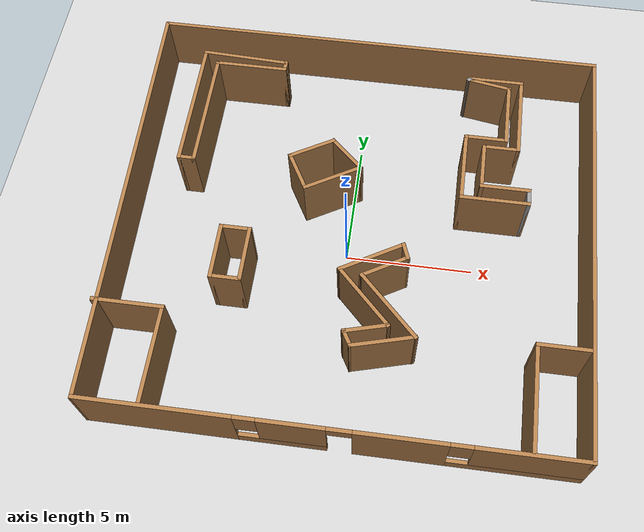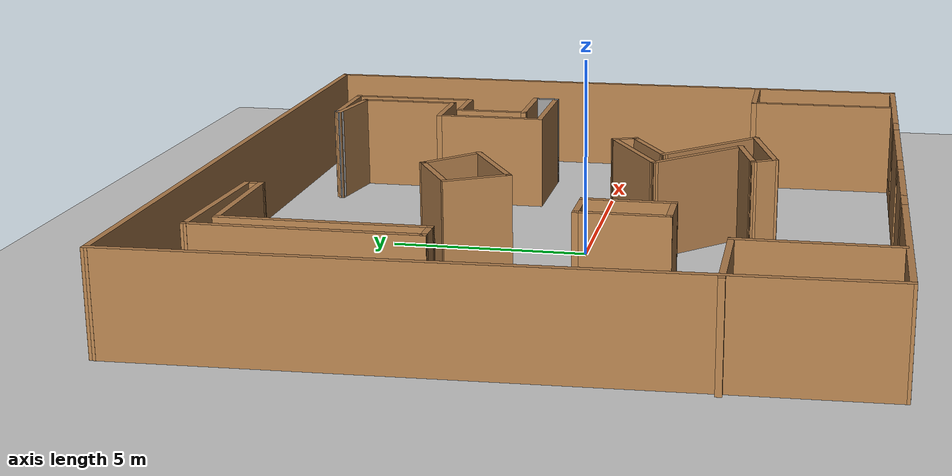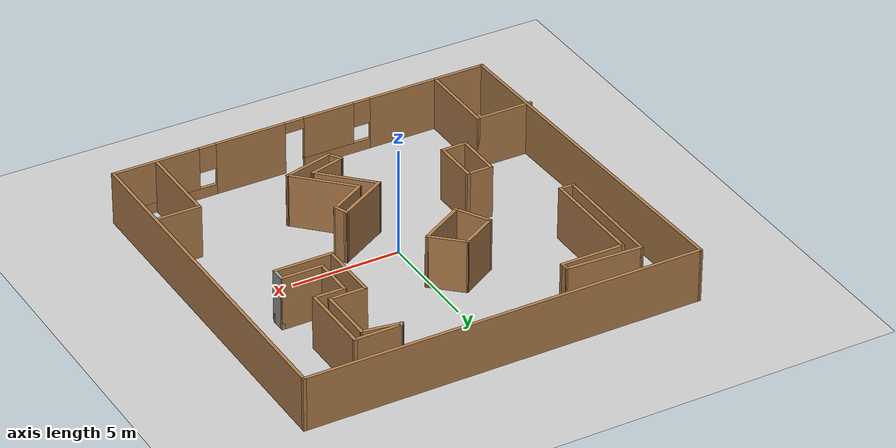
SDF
<sdf version="1.7">
 <world name="__default__">
  <gravity>0 0 -9.8</gravity>
  <magnetic_field>6e-06 2.3e-05 -4.2e-05</magnetic_field>
  <atmosphere type="adiabatic"/>
  <physics type="ode">
   <max_step_size>0.001</max_step_size>
   <real_time_factor>1</real_time_factor>
   <real_time_update_rate>1000</real_time_update_rate>
  </physics>
  <scene><ambient>0.4 0.4 0.4 1</ambient><background>0.7 0.7 0.7 1</background><shadows>1</shadows></scene>
  <audio><device>default</device></audio>
  <spherical_coordinates>
   <surface_model>EARTH_WGS84</surface_model>
   <latitude_deg>0</latitude_deg>
   <longitude_deg>0</longitude_deg>
   <elevation>0</elevation>
   <heading_deg>0</heading_deg>
  </spherical_coordinates>
  <model name="myworld2">
   <pose>0.15746 0.66916 0 0 -0 0</pose>
   <link name="Wall_10">
    <collision name="Wall_10_Collision">
     <geometry><box><size>3 0.15 2.5</size></box></geometry>
     <pose>0 0 1.25 0 -0 0</pose>
    </collision>
    <visual name="Wall_10_Visual">
     <pose>0 0 1.25 0 -0 0</pose>
     <geometry><box><size>3 0.15 2.5</size></box></geometry>
     <material>
      <script><uri>file://media/materials/scripts/gazebo.material</uri><name>Gazebo/Wood</name></script>
      <ambient>1 1 1 1</ambient>
     </material>
     <meta><layer>0</layer></meta>
    </visual>
    <pose>-5.15205 6.56949 0 0 -0 0</pose>
   </link>
   <link name="Wall_11">
    <collision name="Wall_11_Collision">
     <geometry><box><size>0.5 0.15 2.5</size></box></geometry>
     <pose>0 0 1.25 0 -0 0</pose>
    </collision>
    <visual name="Wall_11_Visual">
     <pose>0 0 1.25 0 -0 0</pose>
     <geometry><box><size>0.5 0.15 2.5</size></box></geometry>
     <material>
      <script><uri>file://media/materials/scripts/gazebo.material</uri><name>Gazebo/Wood</name></script>
      <ambient>1 1 1 1</ambient>
     </material>
     <meta><layer>0</layer></meta>
    </visual>
    <pose>-3.72705 6.74449 0 0 -0 1.5708</pose>
   </link>
   <link name="Wall_12">
    <collision name="Wall_12_Collision">
     <geometry><box><size>3.60326 0.15 2.5</size></box></geometry>
     <pose>0 0 1.25 0 -0 0</pose>
    </collision>
    <visual name="Wall_12_Visual">
     <pose>0 0 1.25 0 -0 0</pose>
     <geometry><box><size>3.60326 0.15 2.5</size></box></geometry>
     <material>
      <script><uri>file://media/materials/scripts/gazebo.material</uri><name>Gazebo/Wood</name></script>
      <ambient>1 1 1 1</ambient>
     </material>
     <meta><layer>0</layer></meta>
    </visual>
    <pose>-5.45205 6.99449 0 0 -0 3.09814</pose>
   </link>
   <link name="Wall_14">
    <collision name="Wall_14_Collision">
     <geometry><box><size>2.75 0.15 2.5</size></box></geometry>
     <pose>0 0 1.25 0 -0 0</pose>
    </collision>
    <visual name="Wall_14_Visual">
     <pose>0 0 1.25 0 -0 0</pose>
     <geometry><box><size>2.75 0.15 2.5</size></box></geometry>
     <material>
      <script><uri>file://media/materials/scripts/gazebo.material</uri><name>Gazebo/Wood</name></script>
      <ambient>1 1 1 1</ambient>
     </material>
     <meta><layer>0</layer></meta>
    </visual>
    <pose>5.66733 5.4313 0 0 -0 -1.5708</pose>
   </link>
   <link name="Wall_15">
    <collision name="Wall_15_Collision">
     <geometry><box><size>1.75 0.15 2.5</size></box></geometry>
     <pose>0 0 1.25 0 -0 0</pose>
    </collision>
    <visual name="Wall_15_Visual">
     <pose>0 0 1.25 0 -0 0</pose>
     <geometry><box><size>1.75 0.15 2.5</size></box></geometry>
     <material>
      <script><uri>file://media/materials/scripts/gazebo.material</uri><name>Gazebo/Wood</name></script>
      <ambient>1 1 1 1</ambient>
     </material>
     <meta><layer>0</layer></meta>
    </visual>
    <pose>4.86733 4.1313 0 0 -0 3.14159</pose>
   </link>
   <link name="Wall_16">
    <collision name="Wall_16_Collision">
     <geometry><box><size>3 0.15 2.5</size></box></geometry>
     <pose>0 0 1.25 0 -0 0</pose>
    </collision>
    <visual name="Wall_16_Visual">
     <pose>0 0 1.25 0 -0 0</pose>
     <geometry><box><size>3 0.15 2.5</size></box></geometry>
     <material>
      <script><uri>file://media/materials/scripts/gazebo.material</uri><name>Gazebo/Wood</name></script>
      <ambient>1 1 1 1</ambient>
     </material>
     <meta><layer>0</layer></meta>
    </visual>
    <pose>4.06733 2.7063 0 0 -0 -1.5708</pose>
   </link>
   <link name="Wall_17">
    <collision name="Wall_17_Collision">
     <geometry><box><size>2.75 0.15 2.5</size></box></geometry>
     <pose>0 0 1.25 0 -0 0</pose>
    </collision>
    <visual name="Wall_17_Visual">
     <pose>0 0 1.25 0 -0 0</pose>
     <geometry><box><size>2.75 0.15 2.5</size></box></geometry>
     <material>
      <script><uri>file://media/materials/scripts/gazebo.material</uri><name>Gazebo/Wood</name></script>
      <ambient>1 1 1 1</ambient>
     </material>
     <meta><layer>0</layer></meta>
    </visual>
    <pose>5.36733 1.2813 0 0 -0 0</pose>
   </link>
   <link name="Wall_18">
    <collision name="Wall_18_Collision">
     <geometry><box><size>0.75 0.15 2.5</size></box></geometry>
     <pose>0 0 1.25 0 -0 0</pose>
    </collision>
    <visual name="Wall_18_Visual">
     <pose>0 0 1.25 0 -0 0</pose>
     <geometry><box><size>0.75 0.15 2.5</size></box></geometry>
     <material>
      <script><uri>file://media/materials/scripts/gazebo.material</uri><name>Gazebo/Grey</name></script>
      <ambient>1 1 1 1</ambient>
     </material>
     <meta><layer>0</layer></meta>
    </visual>
    <pose>6.66733 1.5813 0 0 -0 1.5708</pose>
   </link>
   <link name="Wall_19">
    <collision name="Wall_19_Collision">
     <geometry><box><size>2 0.15 2.5</size></box></geometry>
     <pose>0 0 1.25 0 -0 0</pose>
    </collision>
    <visual name="Wall_19_Visual">
     <pose>0 0 1.25 0 -0 0</pose>
     <geometry><box><size>2 0.15 2.5</size></box></geometry>
     <material>
      <script><uri>file://media/materials/scripts/gazebo.material</uri><name>Gazebo/Wood</name></script>
      <ambient>1 1 1 1</ambient>
     </material>
     <meta><layer>0</layer></meta>
    </visual>
    <pose>5.74233 1.8813 0 0 -0 3.14159</pose>
   </link>
   <link name="Wall_2">
    <pose>0.251095 -8.425 0 0 -0 0</pose>
    <visual name="Wall_2_Visual_0">
     <pose>-6.1569 0 1.25 0 -0 0</pose>
     <geometry><box><size>5.6862 0.15 2.5</size></box></geometry>
     <material>
      <script><uri>file://media/materials/scripts/gazebo.material</uri><name>Gazebo/Wood</name></script>
      <ambient>1 1 1 1</ambient>
     </material>
     <meta><layer>0</layer></meta>
    </visual>
    <collision name="Wall_2_Collision_0">
     <geometry><box><size>5.6862 0.15 2.5</size></box></geometry>
     <pose>-6.1569 0 1.25 0 -0 0</pose>
    </collision>
    <visual name="Wall_2_Visual_1">
     <pose>2.47157 0 1.25 0 -0 0</pose>
     <geometry><box><size>3.31692 0.15 2.5</size></box></geometry>
     <material>
      <script><uri>file://media/materials/scripts/gazebo.material</uri><name>Gazebo/Wood</name></script>
      <ambient>1 1 1 1</ambient>
     </material>
     <meta><layer>0</layer></meta>
    </visual>
    <collision name="Wall_2_Collision_1">
     <geometry><box><size>3.31692 0.15 2.5</size></box></geometry>
     <pose>2.47157 0 1.25 0 -0 0</pose>
    </collision>
    <visual name="Wall_2_Visual_2">
     <pose>-1.70035 0 0.25 0 -0 0</pose>
     <geometry><box><size>3.2269 0.15 0.5</size></box></geometry>
     <material>
      <script><uri>file://media/materials/scripts/gazebo.material</uri><name>Gazebo/Wood</name></script>
      <ambient>1 1 1 1</ambient>
     </material>
     <meta><layer>0</layer></meta>
    </visual>
    <collision name="Wall_2_Collision_2">
     <geometry><box><size>3.2269 0.15 0.5</size></box></geometry>
     <pose>-1.70035 0 0.25 0 -0 0</pose>
    </collision>
    <visual name="Wall_2_Visual_3">
     <pose>6.56501 0 0.25 0 -0 0</pose>
     <geometry><box><size>4.86997 0.15 0.5</size></box></geometry>
     <material>
      <script><uri>file://media/materials/scripts/gazebo.material</uri><name>Gazebo/Wood</name></script>
      <ambient>1 1 1 1</ambient>
     </material>
     <meta><layer>0</layer></meta>
    </visual>
    <collision name="Wall_2_Collision_3">
     <geometry><box><size>4.86997 0.15 0.5</size></box></geometry>
     <pose>6.56501 0 0.25 0 -0 0</pose>
    </collision>
    <visual name="Wall_2_Visual_4">
     <pose>-1.30035 0 1.5 0 -0 0</pose>
     <geometry><box><size>2.4269 0.15 2</size></box></geometry>
     <material>
      <script><uri>file://media/materials/scripts/gazebo.material</uri><name>Gazebo/Wood</name></script>
      <ambient>1 1 1 1</ambient>
     </material>
     <meta><layer>0</layer></meta>
    </visual>
    <collision name="Wall_2_Collision_4">
     <geometry><box><size>2.4269 0.15 2</size></box></geometry>
     <pose>-1.30035 0 1.5 0 -0 0</pose>
    </collision>
    <visual name="Wall_2_Visual_5">
     <pose>-1.30035 0 1.5 0 -0 0</pose>
     <geometry><box><size>2.4269 0.15 2</size></box></geometry>
     <material>
      <script><uri>file://media/materials/scripts/gazebo.material</uri><name>Gazebo/Wood</name></script>
      <ambient>1 1 1 1</ambient>
     </material>
     <meta><layer>0</layer></meta>
    </visual>
    <collision name="Wall_2_Collision_5">
     <geometry><box><size>2.4269 0.15 2</size></box></geometry>
     <pose>-1.30035 0 1.5 0 -0 0</pose>
    </collision>
    <visual name="Wall_2_Visual_6">
     <pose>6.96501 0 1.5 0 -0 0</pose>
     <geometry><box><size>4.06997 0.15 2</size></box></geometry>
     <material>
      <script><uri>file://media/materials/scripts/gazebo.material</uri><name>Gazebo/Wood</name></script>
      <ambient>1 1 1 1</ambient>
     </material>
     <meta><layer>0</layer></meta>
    </visual>
    <collision name="Wall_2_Collision_6">
     <geometry><box><size>4.06997 0.15 2</size></box></geometry>
     <pose>6.96501 0 1.5 0 -0 0</pose>
    </collision>
    <visual name="Wall_2_Visual_7">
     <pose>-2.9138 0 1.9 0 -0 0</pose>
     <geometry><box><size>0.8 0.15 1.2</size></box></geometry>
     <material>
      <script><uri>file://media/materials/scripts/gazebo.material</uri><name>Gazebo/Wood</name></script>
      <ambient>1 1 1 1</ambient>
     </material>
     <meta><layer>0</layer></meta>
    </visual>
    <collision name="Wall_2_Collision_7">
     <geometry><box><size>0.8 0.15 1.2</size></box></geometry>
     <pose>-2.9138 0 1.9 0 -0 0</pose>
    </collision>
    <visual name="Wall_2_Visual_8">
     <pose>4.53003 0 1.9 0 -0 0</pose>
     <geometry><box><size>0.8 0.15 1.2</size></box></geometry>
     <material>
      <script><uri>file://media/materials/scripts/gazebo.material</uri><name>Gazebo/Wood</name></script>
      <ambient>1 1 1 1</ambient>
     </material>
     <meta><layer>0</layer></meta>
    </visual>
    <collision name="Wall_2_Collision_8">
     <geometry><box><size>0.8 0.15 1.2</size></box></geometry>
     <pose>4.53003 0 1.9 0 -0 0</pose>
    </collision>
    <visual name="Wall_2_Visual_9">
     <pose>0.363103 0 2.25 0 -0 0</pose>
     <geometry><box><size>0.9 0.15 0.5</size></box></geometry>
     <material>
      <script><uri>file://media/materials/scripts/gazebo.material</uri><name>Gazebo/Wood</name></script>
      <ambient>1 1 1 1</ambient>
     </material>
     <meta><layer>0</layer></meta>
    </visual>
    <collision name="Wall_2_Collision_9">
     <geometry><box><size>0.9 0.15 0.5</size></box></geometry>
     <pose>0.363103 0 2.25 0 -0 0</pose>
    </collision>
    <visual name="Wall_2_Visual_10">
     <pose>0.363103 0 2.25 0 -0 0</pose>
     <geometry><box><size>0.9 0.15 0.5</size></box></geometry>
     <material>
      <script><uri>file://media/materials/scripts/gazebo.material</uri><name>Gazebo/Wood</name></script>
      <ambient>1 1 1 1</ambient>
     </material>
     <meta><layer>0</layer></meta>
    </visual>
    <collision name="Wall_2_Collision_10">
     <geometry><box><size>0.9 0.15 0.5</size></box></geometry>
     <pose>0.363103 0 2.25 0 -0 0</pose>
    </collision>
   </link>
   <link name="Wall_20">
    <collision name="Wall_20_Collision">
     <geometry><box><size>2 0.15 2.5</size></box></geometry>
     <pose>0 0 1.25 0 -0 0</pose>
    </collision>
    <visual name="Wall_20_Visual">
     <pose>0 0 1.25 0 -0 0</pose>
     <geometry><box><size>2 0.15 2.5</size></box></geometry>
     <material>
      <script><uri>file://media/materials/scripts/gazebo.material</uri><name>Gazebo/Wood</name></script>
      <ambient>1 1 1 1</ambient>
     </material>
     <meta><layer>0</layer></meta>
    </visual>
    <pose>4.81733 2.8063 0 0 -0 1.5708</pose>
   </link>
   <link name="Wall_21">
    <collision name="Wall_21_Collision">
     <geometry><box><size>1.5 0.15 2.5</size></box></geometry>
     <pose>0 0 1.25 0 -0 0</pose>
    </collision>
    <visual name="Wall_21_Visual">
     <pose>0 0 1.25 0 -0 0</pose>
     <geometry><box><size>1.5 0.15 2.5</size></box></geometry>
     <material>
      <script><uri>file://media/materials/scripts/gazebo.material</uri><name>Gazebo/Wood</name></script>
      <ambient>1 1 1 1</ambient>
     </material>
     <meta><layer>0</layer></meta>
    </visual>
    <pose>5.49233 3.7313 0 0 -0 0</pose>
   </link>
   <link name="Wall_22">
    <collision name="Wall_22_Collision">
     <geometry><box><size>3.5 0.15 2.5</size></box></geometry>
     <pose>0 0 1.25 0 -0 0</pose>
    </collision>
    <visual name="Wall_22_Visual">
     <pose>0 0 1.25 0 -0 0</pose>
     <geometry><box><size>3.5 0.15 2.5</size></box></geometry>
     <material>
      <script><uri>file://media/materials/scripts/gazebo.material</uri><name>Gazebo/Wood</name></script>
      <ambient>1 1 1 1</ambient>
     </material>
     <meta><layer>0</layer></meta>
    </visual>
    <pose>6.16733 5.4063 0 0 -0 1.5708</pose>
   </link>
   <link name="Wall_23">
    <collision name="Wall_23_Collision">
     <geometry><box><size>2.25 0.15 2.5</size></box></geometry>
     <pose>0 0 1.25 0 -0 0</pose>
    </collision>
    <visual name="Wall_23_Visual">
     <pose>0 0 1.25 0 -0 0</pose>
     <geometry><box><size>2.25 0.15 2.5</size></box></geometry>
     <material>
      <script><uri>file://media/materials/scripts/gazebo.material</uri><name>Gazebo/Wood</name></script>
      <ambient>1 1 1 1</ambient>
     </material>
     <meta><layer>0</layer></meta>
    </visual>
    <pose>5.11733 7.0813 0 0 -0 3.14159</pose>
   </link>
   <link name="Wall_24">
    <collision name="Wall_24_Collision">
     <geometry><box><size>0.25 0.15 2.5</size></box></geometry>
     <pose>0 0 1.25 0 -0 0</pose>
    </collision>
    <visual name="Wall_24_Visual">
     <pose>0 0 1.25 0 -0 0</pose>
     <geometry><box><size>0.25 0.15 2.5</size></box></geometry>
     <material>
      <script><uri>file://media/materials/scripts/gazebo.material</uri><name>Gazebo/Grey</name></script>
      <ambient>1 1 1 1</ambient>
     </material>
     <meta><layer>0</layer></meta>
    </visual>
    <pose>4.03198 7.04595 0 0 -0 -2.35619</pose>
   </link>
   <link name="Wall_25">
    <collision name="Wall_25_Collision">
     <geometry><box><size>1.84389 0.15 2.5</size></box></geometry>
     <pose>0 0 1.25 0 -0 0</pose>
    </collision>
    <visual name="Wall_25_Visual">
     <pose>0 0 1.25 0 -0 0</pose>
     <geometry><box><size>1.84389 0.15 2.5</size></box></geometry>
     <material>
      <script><uri>file://media/materials/scripts/gazebo.material</uri><name>Gazebo/Wood</name></script>
      <ambient>1 1 1 1</ambient>
     </material>
     <meta><layer>0</layer></meta>
    </visual>
    <pose>4.83198 6.87095 0 0 -0 -0.165636</pose>
   </link>
   <link name="Wall_27">
    <collision name="Wall_27_Collision">
     <geometry><box><size>2 0.15 2.5</size></box></geometry>
     <pose>0 0 1.25 0 -0 0</pose>
    </collision>
    <visual name="Wall_27_Visual">
     <pose>0 0 1.25 0 -0 0</pose>
     <geometry><box><size>2 0.15 2.5</size></box></geometry>
     <material>
      <script><uri>file://media/materials/scripts/gazebo.material</uri><name>Gazebo/Wood</name></script>
      <ambient>1 1 1 1</ambient>
     </material>
     <meta><layer>0</layer></meta>
    </visual>
    <pose>-1.99659 2.78418 0 0 -0 -2.61799</pose>
   </link>
   <link name="Wall_28">
    <collision name="Wall_28_Collision">
     <geometry><box><size>1.75 0.15 2.5</size></box></geometry>
     <pose>0 0 1.25 0 -0 0</pose>
    </collision>
    <visual name="Wall_28_Visual">
     <pose>0 0 1.25 0 -0 0</pose>
     <geometry><box><size>1.75 0.15 2.5</size></box></geometry>
     <material>
      <script><uri>file://media/materials/scripts/gazebo.material</uri><name>Gazebo/Wood</name></script>
      <ambient>1 1 1 1</ambient>
     </material>
     <meta><layer>0</layer></meta>
    </visual>
    <pose>-2.39767 1.62886 0 0 -0 -1.0472</pose>
   </link>
   <link name="Wall_29">
    <collision name="Wall_29_Collision">
     <geometry><box><size>2.5 0.15 2.5</size></box></geometry>
     <pose>0 0 1.25 0 -0 0</pose>
    </collision>
    <visual name="Wall_29_Visual">
     <pose>0 0 1.25 0 -0 0</pose>
     <geometry><box><size>2.5 0.15 2.5</size></box></geometry>
     <material>
      <script><uri>file://media/materials/scripts/gazebo.material</uri><name>Gazebo/Wood</name></script>
      <ambient>1 1 1 1</ambient>
     </material>
     <meta><layer>0</layer></meta>
    </visual>
    <pose>-0.980087 1.52354 0 0 -0 0.523599</pose>
   </link>
   <link name="Wall_3">
    <collision name="Wall_3_Collision">
     <geometry><box><size>17 0.15 2.5</size></box></geometry>
     <pose>0 0 1.25 0 -0 0</pose>
    </collision>
    <visual name="Wall_3_Visual">
     <pose>0 0 1.25 0 -0 0</pose>
     <geometry><box><size>17 0.15 2.5</size></box></geometry>
     <material>
      <script><uri>file://media/materials/scripts/gazebo.material</uri><name>Gazebo/Wood</name></script>
      <ambient>1 1 1 1</ambient>
     </material>
     <meta><layer>0</layer></meta>
    </visual>
    <pose>9.1761 -0 0 0 -0 1.5708</pose>
   </link>
   <link name="Wall_30">
    <collision name="Wall_30_Collision">
     <geometry><box><size>1.82631 0.15 2.5</size></box></geometry>
     <pose>0 0 1.25 0 -0 0</pose>
    </collision>
    <visual name="Wall_30_Visual">
     <pose>0 0 1.25 0 -0 0</pose>
     <geometry><box><size>1.82631 0.15 2.5</size></box></geometry>
     <material>
      <script><uri>file://media/materials/scripts/gazebo.material</uri><name>Gazebo/Wood</name></script>
      <ambient>1 1 1 1</ambient>
     </material>
     <meta><layer>0</layer></meta>
    </visual>
    <pose>-0.579013 2.67886 0 0 -0 2.39728</pose>
   </link>
   <link name="Wall_32">
    <collision name="Wall_32_Collision">
     <geometry><box><size>2.25 0.15 2.5</size></box></geometry>
     <pose>0 0 1.25 0 -0 0</pose>
    </collision>
    <visual name="Wall_32_Visual">
     <pose>0 0 1.25 0 -0 0</pose>
     <geometry><box><size>2.25 0.15 2.5</size></box></geometry>
     <material>
      <script><uri>file://media/materials/scripts/gazebo.material</uri><name>Gazebo/Wood</name></script>
      <ambient>1 1 1 1</ambient>
     </material>
     <meta><layer>0</layer></meta>
    </visual>
    <pose>-4.88776 -2.22684 0 0 -0 -1.5708</pose>
   </link>
   <link name="Wall_33">
    <collision name="Wall_33_Collision">
     <geometry><box><size>1.25 0.15 2.5</size></box></geometry>
     <pose>0 0 1.25 0 -0 0</pose>
    </collision>
    <visual name="Wall_33_Visual">
     <pose>0 0 1.25 0 -0 0</pose>
     <geometry><box><size>1.25 0.15 2.5</size></box></geometry>
     <material>
      <script><uri>file://media/materials/scripts/gazebo.material</uri><name>Gazebo/Wood</name></script>
      <ambient>1 1 1 1</ambient>
     </material>
     <meta><layer>0</layer></meta>
    </visual>
    <pose>-4.33776 -3.27684 0 0 -0 0</pose>
   </link>
   <link name="Wall_34">
    <collision name="Wall_34_Collision">
     <geometry><box><size>2.25 0.15 2.5</size></box></geometry>
     <pose>0 0 1.25 0 -0 0</pose>
    </collision>
    <visual name="Wall_34_Visual">
     <pose>0 0 1.25 0 -0 0</pose>
     <geometry><box><size>2.25 0.15 2.5</size></box></geometry>
     <material>
      <script><uri>file://media/materials/scripts/gazebo.material</uri><name>Gazebo/Wood</name></script>
      <ambient>1 1 1 1</ambient>
     </material>
     <meta><layer>0</layer></meta>
    </visual>
    <pose>-3.78776 -2.22684 0 0 -0 1.5708</pose>
   </link>
   <link name="Wall_35">
    <collision name="Wall_35_Collision">
     <geometry><box><size>1.25 0.15 2.5</size></box></geometry>
     <pose>0 0 1.25 0 -0 0</pose>
    </collision>
    <visual name="Wall_35_Visual">
     <pose>0 0 1.25 0 -0 0</pose>
     <geometry><box><size>1.25 0.15 2.5</size></box></geometry>
     <material>
      <script><uri>file://media/materials/scripts/gazebo.material</uri><name>Gazebo/Wood</name></script>
      <ambient>1 1 1 1</ambient>
     </material>
     <meta><layer>0</layer></meta>
    </visual>
    <pose>-4.33776 -1.17684 0 0 -0 3.14159</pose>
   </link>
   <link name="Wall_37">
    <collision name="Wall_37_Collision">
     <geometry><box><size>2.75 0.15 2.5</size></box></geometry>
     <pose>0 0 1.25 0 -0 0</pose>
    </collision>
    <visual name="Wall_37_Visual">
     <pose>0 0 1.25 0 -0 0</pose>
     <geometry><box><size>2.75 0.15 2.5</size></box></geometry>
     <material>
      <script><uri>file://media/materials/scripts/gazebo.material</uri><name>Gazebo/Wood</name></script>
      <ambient>1 1 1 1</ambient>
     </material>
     <meta><layer>0</layer></meta>
    </visual>
    <pose>0.944766 -1.74593 0 0 -0 -2.61799</pose>
   </link>
   <link name="Wall_38">
    <collision name="Wall_38_Collision">
     <geometry><box><size>3 0.15 2.5</size></box></geometry>
     <pose>0 0 1.25 0 -0 0</pose>
    </collision>
    <visual name="Wall_38_Visual">
     <pose>0 0 1.25 0 -0 0</pose>
     <geometry><box><size>3 0.15 2.5</size></box></geometry>
     <material>
      <script><uri>file://media/materials/scripts/gazebo.material</uri><name>Gazebo/Wood</name></script>
      <ambient>1 1 1 1</ambient>
     </material>
     <meta><layer>0</layer></meta>
    </visual>
    <pose>0.82656 -3.40355 0 0 -0 -0.785398</pose>
   </link>
   <link name="Wall_39">
    <collision name="Wall_39_Collision">
     <geometry><box><size>1.75 0.15 2.5</size></box></geometry>
     <pose>0 0 1.25 0 -0 0</pose>
    </collision>
    <visual name="Wall_39_Visual">
     <pose>0 0 1.25 0 -0 0</pose>
     <geometry><box><size>1.75 0.15 2.5</size></box></geometry>
     <material>
      <script><uri>file://media/materials/scripts/gazebo.material</uri><name>Gazebo/Wood</name></script>
      <ambient>1 1 1 1</ambient>
     </material>
     <meta><layer>0</layer></meta>
    </visual>
    <pose>1.06145 -4.61824 0 0 -0 -2.87979</pose>
   </link>
   <link name="Wall_4">
    <collision name="Wall_4_Collision">
     <geometry><box><size>18.5 0.15 2.5</size></box></geometry>
     <pose>0 0 1.25 0 -0 0</pose>
    </collision>
    <visual name="Wall_4_Visual">
     <pose>0 0 1.25 0 -0 0</pose>
     <geometry><box><size>18.5 0.15 2.5</size></box></geometry>
     <material>
      <script><uri>file://media/materials/scripts/gazebo.material</uri><name>Gazebo/Wood</name></script>
      <ambient>1 1 1 1</ambient>
     </material>
     <meta><layer>0</layer></meta>
    </visual>
    <pose>0.001095 8.425 0 0 -0 3.14159</pose>
   </link>
   <link name="Wall_40">
    <collision name="Wall_40_Collision">
     <geometry><box><size>0.75 0.15 2.5</size></box></geometry>
     <pose>0 0 1.25 0 -0 0</pose>
    </collision>
    <visual name="Wall_40_Visual">
     <pose>0 0 1.25 0 -0 0</pose>
     <geometry><box><size>0.75 0.15 2.5</size></box></geometry>
     <material>
      <script><uri>file://media/materials/scripts/gazebo.material</uri><name>Gazebo/Wood</name></script>
      <ambient>1 1 1 1</ambient>
     </material>
     <meta><layer>0</layer></meta>
    </visual>
    <pose>0.438706 -5.0851 0 0 -0 -1.0472</pose>
   </link>
   <link name="Wall_41">
    <collision name="Wall_41_Collision">
     <geometry><box><size>2.5 0.15 2.5</size></box></geometry>
     <pose>0 0 1.25 0 -0 0</pose>
    </collision>
    <visual name="Wall_41_Visual">
     <pose>0 0 1.25 0 -0 0</pose>
     <geometry><box><size>2.5 0.15 2.5</size></box></geometry>
     <material>
      <script><uri>file://media/materials/scripts/gazebo.material</uri><name>Gazebo/Wood</name></script>
      <ambient>1 1 1 1</ambient>
     </material>
     <meta><layer>0</layer></meta>
    </visual>
    <pose>1.72367 -5.0408 0 0 -0 0.261799</pose>
   </link>
   <link name="Wall_42">
    <collision name="Wall_42_Collision">
     <geometry><box><size>3.25 0.15 2.5</size></box></geometry>
     <pose>0 0 1.25 0 -0 0</pose>
    </collision>
    <visual name="Wall_42_Visual">
     <pose>0 0 1.25 0 -0 0</pose>
     <geometry><box><size>3.25 0.15 2.5</size></box></geometry>
     <material>
      <script><uri>file://media/materials/scripts/gazebo.material</uri><name>Gazebo/Wood</name></script>
      <ambient>1 1 1 1</ambient>
     </material>
     <meta><layer>0</layer></meta>
    </visual>
    <pose>1.76262 -3.64067 0 0 -0 2.35619</pose>
   </link>
   <link name="Wall_43">
    <collision name="Wall_43_Collision">
     <geometry><box><size>2 0.15 2.5</size></box></geometry>
     <pose>0 0 1.25 0 -0 0</pose>
    </collision>
    <visual name="Wall_43_Visual">
     <pose>0 0 1.25 0 -0 0</pose>
     <geometry><box><size>2 0.15 2.5</size></box></geometry>
     <material>
      <script><uri>file://media/materials/scripts/gazebo.material</uri><name>Gazebo/Wood</name></script>
      <ambient>1 1 1 1</ambient>
     </material>
     <meta><layer>0</layer></meta>
    </visual>
    <pose>1.46767 -2.08215 0 0 -0 0.523599</pose>
   </link>
   <link name="Wall_44">
    <collision name="Wall_44_Collision">
     <geometry><box><size>0.709955 0.15 2.5</size></box></geometry>
     <pose>0 0 1.25 0 -0 0</pose>
    </collision>
    <visual name="Wall_44_Visual">
     <pose>0 0 1.25 0 -0 0</pose>
     <geometry><box><size>0.709955 0.15 2.5</size></box></geometry>
     <material>
      <script><uri>file://media/materials/scripts/gazebo.material</uri><name>Gazebo/Wood</name></script>
      <ambient>1 1 1 1</ambient>
     </material>
     <meta><layer>0</layer></meta>
    </visual>
    <pose>2.16967 -1.35779 0 0 -0 1.9325</pose>
   </link>
   <link name="Wall_46">
    <collision name="Wall_46_Collision">
     <geometry><box><size>2 0.15 2.5</size></box></geometry>
     <pose>0 0 1.25 0 -0 0</pose>
    </collision>
    <visual name="Wall_46_Visual">
     <pose>0 0 1.25 0 -0 0</pose>
     <geometry><box><size>2 0.15 2.5</size></box></geometry>
     <material>
      <script><uri>file://media/materials/scripts/gazebo.material</uri><name>Gazebo/Wood</name></script>
      <ambient>1 1 1 1</ambient>
     </material>
     <meta><layer>0</layer></meta>
    </visual>
    <pose>8.10396 -4.45374 0 0 -0 3.14159</pose>
   </link>
   <link name="Wall_47">
    <collision name="Wall_47_Collision">
     <geometry><box><size>4 0.15 2.5</size></box></geometry>
     <pose>0 0 1.25 0 -0 0</pose>
    </collision>
    <visual name="Wall_47_Visual">
     <pose>0 0 1.25 0 -0 0</pose>
     <geometry><box><size>4 0.15 2.5</size></box></geometry>
     <material>
      <script><uri>file://media/materials/scripts/gazebo.material</uri><name>Gazebo/Wood</name></script>
      <ambient>1 1 1 1</ambient>
     </material>
     <meta><layer>0</layer></meta>
    </visual>
    <pose>7.17896 -6.37874 0 0 -0 -1.5708</pose>
   </link>
   <link name="Wall_49">
    <collision name="Wall_49_Collision">
     <geometry><box><size>2.75 0.15 2.5</size></box></geometry>
     <pose>0 0 1.25 0 -0 0</pose>
    </collision>
    <visual name="Wall_49_Visual">
     <pose>0 0 1.25 0 -0 0</pose>
     <geometry><box><size>2.75 0.15 2.5</size></box></geometry>
     <material>
      <script><uri>file://media/materials/scripts/gazebo.material</uri><name>Gazebo/Wood</name></script>
      <ambient>1 1 1 1</ambient>
     </material>
     <meta><layer>0</layer></meta>
    </visual>
    <pose>-7.63332 -4.73693 0 0 -0 0</pose>
   </link>
   <link name="Wall_5">
    <collision name="Wall_5_Collision">
     <geometry><box><size>17.0074 0.15 2.5</size></box></geometry>
     <pose>0 0 1.25 0 -0 0</pose>
    </collision>
    <visual name="Wall_5_Visual">
     <pose>0 0 1.25 0 -0 0</pose>
     <geometry><box><size>17.0074 0.15 2.5</size></box></geometry>
     <material>
      <script><uri>file://media/materials/scripts/gazebo.material</uri><name>Gazebo/Wood</name></script>
      <ambient>1 1 1 1</ambient>
     </material>
     <meta><layer>0</layer></meta>
    </visual>
    <pose>-8.9239 -0 0 0 -0 -1.54113</pose>
   </link>
   <link name="Wall_52">
    <collision name="Wall_52_Collision">
     <geometry><box><size>3.75 0.15 2.5</size></box></geometry>
     <pose>0 0 1.25 0 -0 0</pose>
    </collision>
    <visual name="Wall_52_Visual">
     <pose>0 0 1.25 0 -0 0</pose>
     <geometry><box><size>3.75 0.15 2.5</size></box></geometry>
     <material>
      <script><uri>file://media/materials/scripts/gazebo.material</uri><name>Gazebo/Wood</name></script>
      <ambient>1 1 1 1</ambient>
     </material>
     <meta><layer>0</layer></meta>
    </visual>
    <pose>-6.33332 -6.53693 0 0 -0 -1.5708</pose>
   </link>
   <link name="Wall_7">
    <collision name="Wall_7_Collision">
     <geometry><box><size>5.5 0.15 2.5</size></box></geometry>
     <pose>0 0 1.25 0 -0 0</pose>
    </collision>
    <visual name="Wall_7_Visual">
     <pose>0 0 1.25 0 -0 0</pose>
     <geometry><box><size>5.5 0.15 2.5</size></box></geometry>
     <material>
      <script><uri>file://media/materials/scripts/gazebo.material</uri><name>Gazebo/Wood</name></script>
      <ambient>1 1 1 1</ambient>
     </material>
     <meta><layer>0</layer></meta>
    </visual>
    <pose>-7.17705 4.39449 0 0 -0 -1.5708</pose>
   </link>
   <link name="Wall_8">
    <collision name="Wall_8_Collision">
     <geometry><box><size>0.75 0.15 2.5</size></box></geometry>
     <pose>0 0 1.25 0 -0 0</pose>
    </collision>
    <visual name="Wall_8_Visual">
     <pose>0 0 1.25 0 -0 0</pose>
     <geometry><box><size>0.75 0.15 2.5</size></box></geometry>
     <material>
      <script><uri>file://media/materials/scripts/gazebo.material</uri><name>Gazebo/Wood</name></script>
      <ambient>1 1 1 1</ambient>
     </material>
     <meta><layer>0</layer></meta>
    </visual>
    <pose>-6.87705 1.71949 0 0 -0 0</pose>
   </link>
   <link name="Wall_9">
    <collision name="Wall_9_Collision">
     <geometry><box><size>5 0.15 2.5</size></box></geometry>
     <pose>0 0 1.25 0 -0 0</pose>
    </collision>
    <visual name="Wall_9_Visual">
     <pose>0 0 1.25 0 -0 0</pose>
     <geometry><box><size>5 0.15 2.5</size></box></geometry>
     <material>
      <script><uri>file://media/materials/scripts/gazebo.material</uri><name>Gazebo/Wood</name></script>
      <ambient>1 1 1 1</ambient>
     </material>
     <meta><layer>0</layer></meta>
    </visual>
    <pose>-6.57705 4.14449 0 0 -0 1.5708</pose>
   </link>
   <static>1</static>
  </model>
  <model name="ground_plane">
   <static>1</static>
   <link name="link">
    <collision name="collision">
     <geometry><plane><normal>0 0 1</normal><size>100 100</size></plane></geometry>
     <surface>
      <contact><collide_bitmask>65535</collide_bitmask></contact>
      <friction><ode><mu>100</mu><mu2>50</mu2></ode></friction>
     </surface>
    </collision>
    <visual name="visual">
     <cast_shadows>0</cast_shadows>
     <geometry><plane><normal>0 0 1</normal><size>100 100</size></plane></geometry>
     <material>
      <script><uri>file://media/materials/scripts/gazebo.material</uri><name>Gazebo/Grey</name></script>
     </material>
    </visual>
   </link>
   <pose>10.0849 -2.81769 0 0 -0 0</pose>
  </model>
 </world>
</sdf>
